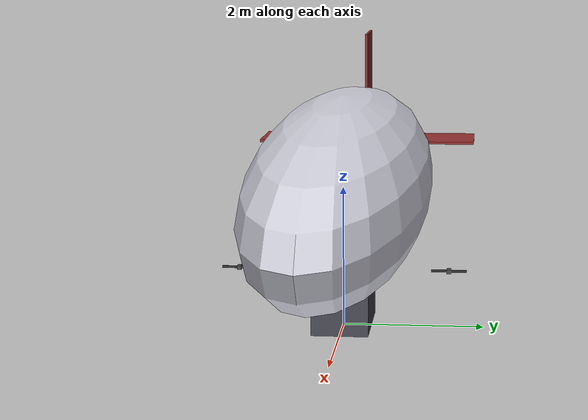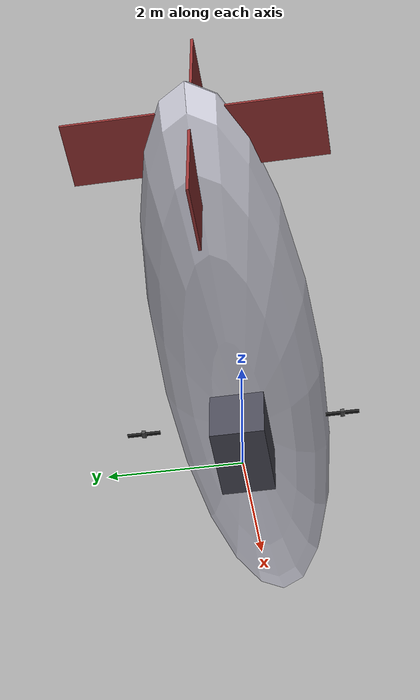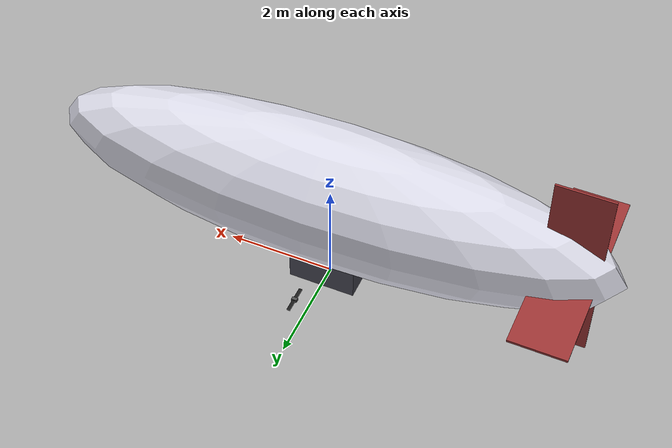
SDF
<?xml version="1.0" encoding="UTF-8"?>
<sdf version="1.10">
  <model name="airship_vectored_independent_fin">
    <include merge="true">
      <uri>model://airship_vectored_independent</uri>
    </include>
    <plugin filename="gz-sim-lift-drag-system" name="gz::sim::systems::LiftDrag">
      <!-- fin_port -->
      <link_name>base_link</link_name>
      <air_density>1.225</air_density>
      <cp>-4.200 1.363 2.050</cp>
      <forward>1 0 0</forward>
      <upward>0 0 1</upward>
      <area>1.40</area>
      <a0>0</a0>
      <cla>6.400</cla>
      <cda>0.903</cda>
      <cma>0</cma>
      <alpha_stall>0.3</alpha_stall>
      <cla_stall>-1.35</cla_stall>
      <cda_stall>1.2</cda_stall>
      <cma_stall>0</cma_stall>
    </plugin>
    <plugin filename="gz-sim-lift-drag-system" name="gz::sim::systems::LiftDrag">
      <!-- fin_starboard -->
      <link_name>base_link</link_name>
      <air_density>1.225</air_density>
      <cp>-4.200 -1.363 2.050</cp>
      <forward>1 0 0</forward>
      <upward>0 0 1</upward>
      <area>1.40</area>
      <a0>0</a0>
      <cla>6.400</cla>
      <cda>0.903</cda>
      <cma>0</cma>
      <alpha_stall>0.3</alpha_stall>
      <cla_stall>-1.35</cla_stall>
      <cda_stall>1.2</cda_stall>
      <cma_stall>0</cma_stall>
    </plugin>
    <plugin filename="gz-sim-lift-drag-system" name="gz::sim::systems::LiftDrag">
      <!-- fin_top -->
      <link_name>base_link</link_name>
      <air_density>1.225</air_density>
      <cp>-4.200 0.000 3.413</cp>
      <forward>1 0 0</forward>
      <upward>0 1 0</upward>
      <area>1.40</area>
      <a0>0</a0>
      <cla>6.400</cla>
      <cda>0.903</cda>
      <cma>0</cma>
      <alpha_stall>0.3</alpha_stall>
      <cla_stall>-1.35</cla_stall>
      <cda_stall>1.2</cda_stall>
      <cma_stall>0</cma_stall>
    </plugin>
    <plugin filename="gz-sim-lift-drag-system" name="gz::sim::systems::LiftDrag">
      <!-- fin_bottom -->
      <link_name>base_link</link_name>
      <air_density>1.225</air_density>
      <cp>-4.200 0.000 0.687</cp>
      <forward>1 0 0</forward>
      <upward>0 1 0</upward>
      <area>1.40</area>
      <a0>0</a0>
      <cla>6.400</cla>
      <cda>0.903</cda>
      <cma>0</cma>
      <alpha_stall>0.3</alpha_stall>
      <cla_stall>-1.35</cla_stall>
      <cda_stall>1.2</cda_stall>
      <cma_stall>0</cma_stall>
    </plugin>
  </model>
</sdf>

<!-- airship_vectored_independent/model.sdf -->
<sdf version="1.10">
  <model name="airship_vectored_independent">
    <include merge="true">
      <uri>model://airship_base</uri>
    </include>
    <link name="pod_starboard">
      <pose>0 -1.5 0.8125 0 0 0</pose>
      <inertial>
        <mass>0.4</mass>
        <inertia>
          <ixx>0.001</ixx>
          <iyy>0.001</iyy>
          <izz>0.001</izz>
        </inertia>
      </inertial>
      <visual name="pod_starboard_visual">
        <geometry>
          <box>
            <size>0.10 0.06 0.06</size>
          </box>
        </geometry>
        <material>
          <ambient>0.3 0.3 0.3 1</ambient>
          <diffuse>0.3 0.3 0.3 1</diffuse>
        </material>
      </visual>
    </link>
    <joint name="tilt_starboard_joint" type="revolute">
      <parent>base_link</parent>
      <child>pod_starboard</child>
      <axis>
        <xyz>0 -1 0</xyz>
        <limit>
          <lower>-3.141593</lower>
          <upper>3.141593</upper>
        </limit>
        <dynamics>
          <damping>0.01</damping>
        </dynamics>
      </axis>
    </joint>
    <link name="prop_starboard">
      <pose degrees="true">0 -1.5 0.8125 0 90 0</pose>
      <inertial>
        <mass>0.1</mass>
        <inertia>
          <ixx>0.001</ixx>
          <iyy>0.001</iyy>
          <izz>0.001</izz>
        </inertia>
      </inertial>
      <visual name="prop_starboard_visual">
        <geometry>
          <box>
            <size>0.02 0.5 0.06</size>
          </box>
        </geometry>
        <material>
          <ambient>0.1 0.1 0.1 1</ambient>
          <diffuse>0.1 0.1 0.1 1</diffuse>
        </material>
      </visual>
    </link>
    <joint name="prop_starboard_joint" type="revolute">
      <parent>pod_starboard</parent>
      <child>prop_starboard</child>
      <axis>
        <xyz>0 0 1</xyz>
        <limit>
          <lower>-1e+16</lower>
          <upper>1e+16</upper>
        </limit>
        <dynamics>
          <spring_reference>0</spring_reference>
          <spring_stiffness>0</spring_stiffness>
        </dynamics>
      </axis>
    </joint>
    <link name="pod_port">
      <pose>0 1.5 0.8125 0 0 0</pose>
      <inertial>
        <mass>0.4</mass>
        <inertia>
          <ixx>0.001</ixx>
          <iyy>0.001</iyy>
          <izz>0.001</izz>
        </inertia>
      </inertial>
      <visual name="pod_port_visual">
        <geometry>
          <box>
            <size>0.10 0.06 0.06</size>
          </box>
        </geometry>
        <material>
          <ambient>0.3 0.3 0.3 1</ambient>
          <diffuse>0.3 0.3 0.3 1</diffuse>
        </material>
      </visual>
    </link>
    <joint name="tilt_port_joint" type="revolute">
      <parent>base_link</parent>
      <child>pod_port</child>
      <axis>
        <xyz>0 -1 0</xyz>
        <limit>
          <lower>-3.141593</lower>
          <upper>3.141593</upper>
        </limit>
        <dynamics>
          <damping>0.01</damping>
        </dynamics>
      </axis>
    </joint>
    <link name="prop_port">
      <pose degrees="true">0 1.5 0.8125 0 90 0</pose>
      <inertial>
        <mass>0.1</mass>
        <inertia>
          <ixx>0.001</ixx>
          <iyy>0.001</iyy>
          <izz>0.001</izz>
        </inertia>
      </inertial>
      <visual name="prop_port_visual">
        <geometry>
          <box>
            <size>0.02 0.5 0.06</size>
          </box>
        </geometry>
        <material>
          <ambient>0.1 0.1 0.1 1</ambient>
          <diffuse>0.1 0.1 0.1 1</diffuse>
        </material>
      </visual>
    </link>
    <joint name="prop_port_joint" type="revolute">
      <parent>pod_port</parent>
      <child>prop_port</child>
      <axis>
        <xyz>0 0 1</xyz>
        <limit>
          <lower>-1e+16</lower>
          <upper>1e+16</upper>
        </limit>
        <dynamics>
          <spring_reference>0</spring_reference>
          <spring_stiffness>0</spring_stiffness>
        </dynamics>
      </axis>
    </joint>
    <plugin filename="gz-sim-joint-position-controller-system"
      name="gz::sim::systems::JointPositionController">
      <joint_name>tilt_starboard_joint</joint_name>
      <sub_topic>servo_0</sub_topic>
      <p_gain>2.0</p_gain>
      <i_gain>0.0</i_gain>
      <d_gain>0.1</d_gain>
    </plugin>
    <plugin filename="gz-sim-joint-position-controller-system"
      name="gz::sim::systems::JointPositionController">
      <joint_name>tilt_port_joint</joint_name>
      <sub_topic>servo_1</sub_topic>
      <p_gain>2.0</p_gain>
      <i_gain>0.0</i_gain>
      <d_gain>0.1</d_gain>
    </plugin>
    <plugin filename="gz-sim-multicopter-motor-model-system"
      name="gz::sim::systems::MulticopterMotorModel">
      <jointName>prop_starboard_joint</jointName>
      <linkName>prop_starboard</linkName>
      <turningDirection>ccw</turningDirection>
      <timeConstantUp>0.0125</timeConstantUp>
      <timeConstantDown>0.025</timeConstantDown>
      <maxRotVelocity>300.0</maxRotVelocity>
      <motorConstant>0.0002</motorConstant>
      <momentConstant>0.016</momentConstant>
      <commandSubTopic>command/motor_speed</commandSubTopic>
      <motorNumber>0</motorNumber>
      <rotorDragCoefficient>8.06428e-05</rotorDragCoefficient>
      <rollingMomentCoefficient>1e-06</rollingMomentCoefficient>
      <rotorVelocitySlowdownSim>10</rotorVelocitySlowdownSim>
      <motorType>velocity</motorType>
    </plugin>
    <plugin filename="gz-sim-multicopter-motor-model-system"
      name="gz::sim::systems::MulticopterMotorModel">
      <jointName>prop_port_joint</jointName>
      <linkName>prop_port</linkName>
      <turningDirection>cw</turningDirection>
      <timeConstantUp>0.0125</timeConstantUp>
      <timeConstantDown>0.025</timeConstantDown>
      <maxRotVelocity>300.0</maxRotVelocity>
      <motorConstant>0.0002</motorConstant>
      <momentConstant>0.016</momentConstant>
      <commandSubTopic>command/motor_speed</commandSubTopic>
      <motorNumber>1</motorNumber>
      <rotorDragCoefficient>8.06428e-05</rotorDragCoefficient>
      <rollingMomentCoefficient>1e-06</rollingMomentCoefficient>
      <rotorVelocitySlowdownSim>10</rotorVelocitySlowdownSim>
      <motorType>velocity</motorType>
    </plugin>
  </model>
</sdf>

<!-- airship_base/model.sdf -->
<sdf version="1.10">
  <model name="airship_base">
    <self_collide>false</self_collide>
    <static>false</static>
    <link name="base_link">
      <pose>0 0 0 0 0 0</pose>
      <inertial>
        <!-- Hull as a solid ellipsoid plus gondola box, parallel-axis about
             the combined CoM; pods/props carry their own mass in the
             wrapper, on the CoM plane. -->
        <pose>0 0 0.8125 0 0 0</pose>
        <mass>48.0</mass>
        <inertia>
          <ixx>35.8425</ixx>
          <iyy>101.01</iyy>
          <izz>76.5075</izz>
          <ixy>0</ixy>
          <ixz>0</ixz>
          <iyz>0</iyz>
        </inertia>
      </inertial>
      <!-- Buoyancy volume 39.2 m^3 -->
      <collision name="hull_collision">
        <pose>0 0 2.05 0 0 0</pose>
        <geometry>
          <box>
            <size>9.8 2 2</size>
          </box>
        </geometry>
      </collision>
      <!-- Ground contact; buoyancy volume 0.8 m^3 -->
      <collision name="gondola_collision">
        <pose>0 0 0.4 0 0 0</pose>
        <geometry>
          <box>
            <size>1.25 0.8 0.8</size>
          </box>
        </geometry>
        <surface>
          <contact>
            <ode>
              <min_depth>0.001</min_depth>
              <max_vel>0</max_vel>
            </ode>
          </contact>
          <friction>
            <ode />
          </friction>
        </surface>
      </collision>
      <visual name="hull_visual">
        <pose>0 0 2.05 0 0 0</pose>
        <geometry>
          <ellipsoid>
            <radii>5.25 1.25 1.25</radii>
          </ellipsoid>
        </geometry>
        <material>
          <ambient>0.85 0.85 0.9 1</ambient>
          <diffuse>0.85 0.85 0.9 1</diffuse>
          <specular>0.3 0.3 0.3 1</specular>
        </material>
      </visual>
      <visual name="gondola_visual">
        <pose>0 0 0.4 0 0 0</pose>
        <geometry>
          <box>
            <size>1.25 0.8 0.8</size>
          </box>
        </geometry>
        <material>
          <ambient>0.3 0.3 0.35 1</ambient>
          <diffuse>0.3 0.3 0.35 1</diffuse>
          <specular>0.2 0.2 0.2 1</specular>
        </material>
      </visual>
      <!-- Cruciform tail, visual only: no collision and no lift-drag, so it
           adds no weathercock stiffness, in the _aero variant either -->
      <visual name="fin_horizontal_visual">
        <pose>-4.3 0 2.05 0 0 0</pose>
        <geometry>
          <box>
            <size>1.0 3.6 0.04</size>
          </box>
        </geometry>
        <material>
          <ambient>0.6 0.2 0.2 1</ambient>
          <diffuse>0.6 0.2 0.2 1</diffuse>
        </material>
      </visual>
      <visual name="fin_vertical_visual">
        <pose>-4.3 0 2.05 0 0 0</pose>
        <geometry>
          <box>
            <size>1.0 0.04 3.6</size>
          </box>
        </geometry>
        <material>
          <ambient>0.6 0.2 0.2 1</ambient>
          <diffuse>0.6 0.2 0.2 1</diffuse>
        </material>
      </visual>
      <sensor name="air_pressure_sensor" type="air_pressure">
        <gz_frame_id>base_link</gz_frame_id>
        <always_on>1</always_on>
        <update_rate>50</update_rate>
        <air_pressure>
          <!-- Noise modeled after BMP390 -->
          <pressure>
            <noise type="gaussian">
              <mean>0</mean>
              <stddev>3</stddev>
            </noise>
          </pressure>
        </air_pressure>
      </sensor>
      <sensor name="magnetometer_sensor" type="magnetometer">
        <gz_frame_id>base_link</gz_frame_id>
        <always_on>1</always_on>
        <update_rate>100</update_rate>
        <magnetometer>
          <!-- TODO: update to fix units and coordinate system when we move past Harmonic -->
          <!-- See https://github.com/gazebosim/gz-sim/pull/2460 -->
          <!-- 3mgauss RMS: NOTE: noise is in tesla but sensor reports data in gauss -->
          <!-- Noise modeled after IIS2MDC -->
          <x>
            <noise type="gaussian">
              <stddev>0.0001</stddev>
            </noise>
          </x>
          <y>
            <noise type="gaussian">
              <stddev>0.0001</stddev>
            </noise>
          </y>
          <z>
            <noise type="gaussian">
              <stddev>0.0001</stddev>
            </noise>
          </z>
        </magnetometer>
      </sensor>
      <sensor name="imu_sensor" type="imu">
        <gz_frame_id>base_link</gz_frame_id>
        <always_on>1</always_on>
        <update_rate>250</update_rate>
        <imu>
          <angular_velocity>
            <!-- Noise modeled after IIM42653, 0.05 deg/s in rad/s -->
            <x>
              <noise type="gaussian">
                <mean>0.0</mean>
                <stddev>0.0008726646</stddev>
              </noise>
            </x>
            <y>
              <noise type="gaussian">
                <mean>0.0</mean>
                <stddev>0.0008726646</stddev>
              </noise>
            </y>
            <z>
              <noise type="gaussian">
                <mean>0.0</mean>
                <stddev>0.0008726646</stddev>
              </noise>
            </z>
          </angular_velocity>
          <linear_acceleration>
            <!-- Noise modeled after IIM42653, 0.65/0.70 mg-rms in m/s^2 -->
            <x>
              <noise type="gaussian">
                <mean>0.0</mean>
                <stddev>0.00637</stddev>
              </noise>
            </x>
            <y>
              <noise type="gaussian">
                <mean>0.0</mean>
                <stddev>0.00637</stddev>
              </noise>
            </y>
            <z>
              <noise type="gaussian">
                <mean>0.0</mean>
                <stddev>0.00686</stddev>
              </noise>
            </z>
          </linear_acceleration>
        </imu>
      </sensor>
      <sensor name="navsat_sensor" type="navsat">
        <gz_frame_id>base_link</gz_frame_id>
        <always_on>1</always_on>
        <update_rate>30</update_rate>
      </sensor>
    </link>
  </model>
</sdf>
